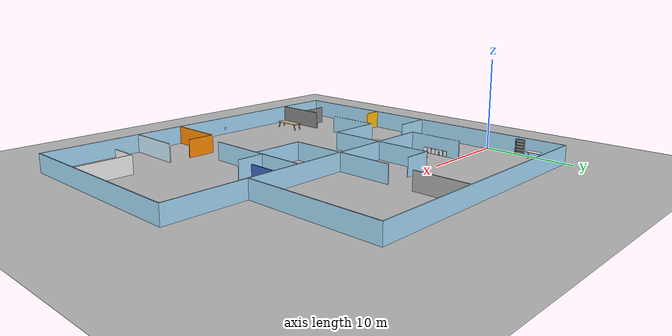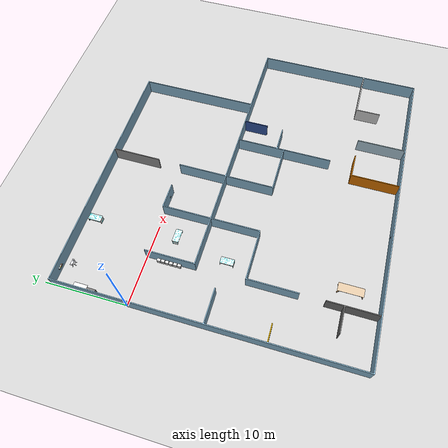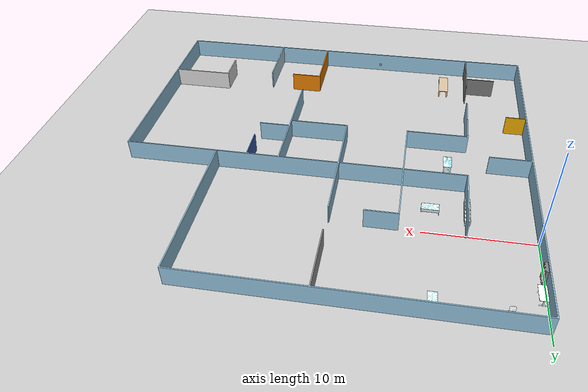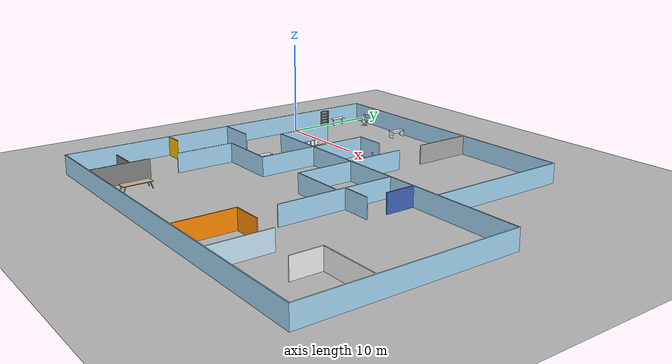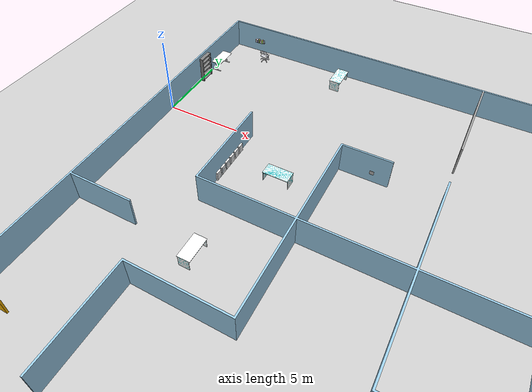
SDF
<sdf version="1.4">
 <world name="chironix">
  <include><uri>model://ground_plane</uri></include>
  <include><uri>model://sun</uri></include>
  <physics name="default_physics" default="0" type="ode">
   <real_time_factor>0.25</real_time_factor>
   <real_time_update_rate>250</real_time_update_rate>
  </physics>
  <scene><ambient>0.4 0.4 0.4 1</ambient><background>0.7 0.7 0.7 1</background><shadows>0</shadows></scene>
  <include><uri>model://walls</uri><name>all_Walls</name><pose>0.05 -9 0 0 0 0</pose></include>
  <include><uri>model://desk3</uri><name>dannies_desk</name><pose>5.0 26.18 -0.020 0 0 1.5707</pose></include>
  <include><uri>model://desk3</uri><name>dannies_desk</name><pose>5.0 26.18 -0.020 0 0 1.5707</pose></include>
  <include><uri>model://shelf</uri><name>shelf</name><pose>0.05 4.5 0 0 0 -1.5707</pose></include>
  <include><uri>model://books</uri><name>books</name><pose>1.6 8.9 0.735 0 0 -1.5707</pose></include>
  <include><uri>model://chair1</uri><name>com_chair</name><pose>-0.5 5.8 0 0 0 0</pose></include>
  <include><uri>model://drawer</uri><name>drawer_1</name><pose>7.8 -2 0 0 0 -1.5707</pose></include>
  <include><uri>model://drawer</uri><name>drawer_2</name><pose>7.8 -1.5 0 0 0 -1.5707</pose></include>
  <include><uri>model://drawer</uri><name>drawer_3</name><pose>7.8 -1 0 0 0 -1.5707</pose></include>
  <include><uri>model://drawer</uri><name>drawer_4</name><pose>7.8 -0.5 0 0 0 -1.5707</pose></include>
  <include><uri>model://drawer</uri><name>drawer_5</name><pose>7.8 0 0 0 0 -1.5707</pose></include>
  <include><uri>model://drawer</uri><name>drawer_6</name><pose>7.8 0.5   0 0 0 -1.5707</pose></include>
  <include><uri>model://smallTable1</uri><name>robot_table_1</name><pose>8.5 -3 0 0 0 0</pose></include>
  <include><uri>model://smallTable1</uri><name>robot_table_2</name><pose>8.25 -10 0 0 0 1.5707</pose></include>
  <include><uri>model://smallTable1</uri><name>small_table_3</name><pose>9.25 6.93 0 0 0 1.5707</pose></include>
  <include><uri>model://table</uri><name>table</name><pose>8.922 -24.966 0 0 0 1.5707</pose></include>
  <include><uri>model://marker1</uri><name>tag_1</name><pose>14 0 0.55 0 0 1.5707</pose></include>
  <include><uri>model://marker5</uri><name>tag_5</name><pose>16 -26.9 0.55 0 0 1.5707</pose></include>
 </world>
</sdf>

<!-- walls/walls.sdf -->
<sdf version="1.4">
    <model name="walls">
        <static>true</static>
        <link name="walls_link">

            <visual name="walls_mesh">
                <geometry>
                    <mesh>
                        <uri>model://walls/meshes/model.dae</uri>
                    </mesh>
                </geometry>
            </visual>

            <collision name="walls_collison">
                <pose>0 0 1</pose>
                <geometry>
                    <box>
                        <size>6.034290 0.105044 2.00</size>
                    </box>
                </geometry>
            </collision>
        </link>
    </model>
</sdf>

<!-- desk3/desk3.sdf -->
<sdf version="1.4">
    <model name="desk2">
        <static>true</static>
        <link name="desk3_link">

            <visual name="desk3_mesh">
                <geometry>
                    <mesh>
                        <uri>model://desk3/meshes/model.dae</uri>
                    </mesh>
                </geometry>
            </visual>

            <collision name="desk3_collison">
                <pose> -20.431646 4.602402 0.394284 0 0 0</pose>
                <geometry>
                    <box>
                        <size>1.591670 0.804758 0.765207</size>
                    </box>
                </geometry>
            </collision>
        </link>
    </model>
</sdf>

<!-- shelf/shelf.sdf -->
<sdf version="1.4">
    <model name="shelf">
        <static>true</static>
        <link name="shelf_link">

            <visual name="shelf_mesh">
                <geometry>
                    <mesh>
                        <uri>model://shelf/meshes/model.dae</uri>
                    </mesh>
                </geometry>
            </visual>

            <collision name="shelf_collison">
                <geometry>
                    <box>
                        <size>1 1 1</size>
                    </box>
                </geometry>
            </collision>

        </link>
    </model>
</sdf>

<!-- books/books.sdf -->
<sdf version="1.4">
    <model name="books">
        <static>true</static>
        <link name="books_link">

            <visual name="books_mesh">
                <geometry>
                    <mesh>
                        <uri>model://books/meshes/model.dae</uri>
                    </mesh>
                </geometry>
            </visual>

            <collision name="books_collison">
                <pose> 0.073440 0.355108 0.132534 0 0 0</pose>
                <geometry>
                    <box>
                        <size>0.176458 0.770352 0.287780</size>
                    </box>
                </geometry>
            </collision>

        </link>
    </model>
</sdf>

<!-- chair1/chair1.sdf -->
<sdf version="1.4">
    <model name="chair1">
        <static>true</static>
        <link name="chair1_link">

            <visual name="chair1_mesh">
                <geometry>
                    <mesh>
                        <uri>model://chair1/meshes/model.dae</uri>
                    </mesh>
                </geometry>
            </visual>

            <collision name="chair1_collison">
                <geometry>
                    <box>
                        <size>1 1 1</size>
                    </box>
                </geometry>
            </collision>

        </link>
    </model>
</sdf>

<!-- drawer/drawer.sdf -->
<sdf version="1.4">
    <model name="drawer">
        <static>true</static>
        <link name="drawer_link">

            <visual name="drawer_mesh">
                <geometry>
                    <mesh>
                        <uri>model://drawer/meshes/model.dae</uri>
                    </mesh>
                </geometry>
            </visual>

            <collision name="drawer_collison">
                <pose>2.053917 -1.803429 0.317839 0 0 0</pose>
                <geometry>
                    <box>
                        <size>0.429536 0.536622 0.612838</size>
                    </box>
                </geometry>
            </collision>

        </link>
    </model>
</sdf>

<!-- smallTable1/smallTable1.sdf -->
<sdf version="1.4">
    <model name="smallTable1">
        <static>true</static>
        <link name="smallTable1_link">

            <visual name="smallTable1_mesh">
                <geometry>
                    <mesh>
                        <uri>model://smallTable1/meshes/model.dae</uri>
                    </mesh>
                </geometry>
            </visual>

            <collision name="smallTable1_collison">
                <pose>0.800299 0.401553 0.384317</pose>
                <geometry>
                    <box>
                        <size>1.6356 0.8 0.7284</size>
                    </box>
                </geometry>
            </collision>
        </link>
    </model>
</sdf>

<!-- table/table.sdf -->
<sdf version="1.4">
    <model name="table">
        <static>true</static>
        <link name="table_link">

            <visual name="table_mesh">
                <geometry>
                    <mesh>
                        <uri>model://table/meshes/model.dae</uri>
                    </mesh>
                </geometry>
            </visual>

            <collision name="table_collison">
                <pose>1.512611 0.491706 0.367172 0 0 0 </pose>
                <geometry>
                    <box>
                        <size>3.046340 1.004740 0.805770</size>
                    </box>
                </geometry>
            </collision>

        </link>
    </model>
</sdf>

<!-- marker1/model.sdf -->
<sdf version="1.6">
  <model name="marker1">
    <static>true</static>
    <link name="link">
      <visual name="visual">
        <geometry>
          <mesh>
            <uri>model://marker1/meshes/marker1.dae</uri>
          <scale>0.52 0.52 0.52</scale></mesh>
        </geometry>
      </visual>
    </link>
  </model>
</sdf>

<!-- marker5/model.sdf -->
<sdf version="1.6">
  <model name="marker5">
    <static>true</static>
    <link name="link">
      <visual name="visual">
        <geometry>
          <mesh>
            <uri>model://marker5/meshes/marker5.dae</uri>
          <scale>0.52 0.52 0.52</scale></mesh>
        </geometry>
      </visual>
    </link>
  </model>
</sdf>
